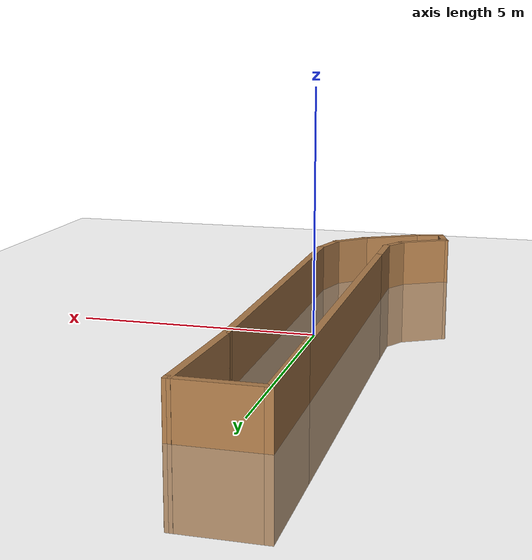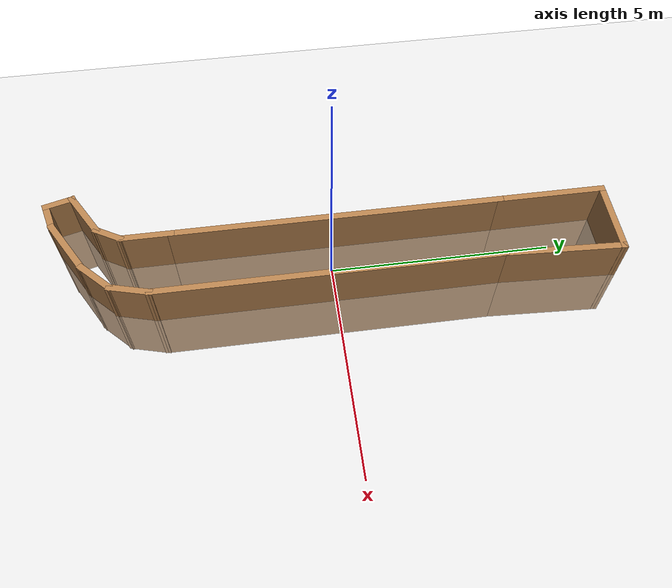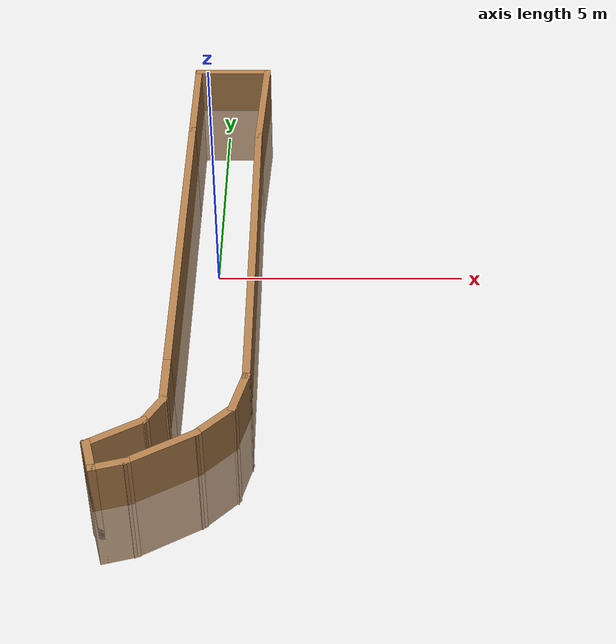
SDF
<sdf version="1.7">
 <world name="default">
  <light name="sun" type="directional">
   <pose>0 0 10 0 -0 0</pose>
   <diffuse>0.8 0.8 0.8 1</diffuse>
   <specular>0.2 0.2 0.2 1</specular>
   <attenuation>
    <range>1000</range>
    <constant>0.9</constant>
    <linear>0.01</linear>
    <quadratic>0.001</quadratic>
   </attenuation>
   <direction>-0.5 0.1 -0.9</direction>
   <spot><inner_angle>0</inner_angle><outer_angle>0</outer_angle><falloff>0</falloff></spot>
  </light>
  <model name="ground_plane">
   <static>1</static>
   <link name="link">
    <collision name="collision">
     <geometry><plane><normal>0 0 1</normal><size>100 100</size></plane></geometry>
     <surface>
      <contact><collide_bitmask>65535</collide_bitmask></contact>
      <friction><ode><mu>100</mu><mu2>50</mu2></ode></friction>
     </surface>
    </collision>
    <visual name="visual">
     <cast_shadows>0</cast_shadows>
     <geometry><plane><normal>0 0 1</normal><size>100 100</size></plane></geometry>
     <material>
      <script><uri>file://media/materials/scripts/gazebo.material</uri><name>Gazebo/Grey</name></script>
     </material>
    </visual>
   </link>
  </model>
  <gravity>0 0 -9.8</gravity>
  <magnetic_field>6e-06 2.3e-05 -4.2e-05</magnetic_field>
  <atmosphere type="adiabatic"/>
  <physics type="ode">
   <max_step_size>0.001</max_step_size>
   <real_time_factor>1</real_time_factor>
   <real_time_update_rate>1000</real_time_update_rate>
  </physics>
  <scene><ambient>0.4 0.4 0.4 1</ambient><background>0.7 0.7 0.7 1</background><shadows>1</shadows></scene>
  <spherical_coordinates>
   <surface_model>EARTH_WGS84</surface_model>
   <latitude_deg>0</latitude_deg>
   <longitude_deg>0</longitude_deg>
   <elevation>0</elevation>
   <heading_deg>0</heading_deg>
  </spherical_coordinates>
  <model name="st_race">
   <pose>-0.587257 0.030906 -1.47357 0 -0 0</pose>
   <link name="Wall_1">
    <collision name="Wall_1_Collision">
     <geometry><box><size>7.75 0.15 2.5</size></box></geometry>
     <pose>0 0 1.25 0 -0 0</pose>
    </collision>
    <visual name="Wall_1_Visual">
     <pose>0 0 1.25 0 -0 0</pose>
     <geometry><box><size>7.75 0.15 2.5</size></box></geometry>
     <material>
      <script><uri>file://media/materials/scripts/gazebo.material</uri><name>Gazebo/Wood</name></script>
      <ambient>1 1 1 1</ambient>
     </material>
     <meta><layer>0</layer></meta>
    </visual>
    <pose>1.31063 -0.165584 0 0 -0 -1.5708</pose>
   </link>
   <link name="Wall_10">
    <collision name="Wall_10_Collision">
     <geometry><box><size>7.5 0.15 2.5</size></box></geometry>
     <pose>0 0 1.25 0 -0 0</pose>
    </collision>
    <visual name="Wall_10_Visual">
     <pose>0 0 1.25 0 -0 0</pose>
     <geometry><box><size>7.5 0.15 2.5</size></box></geometry>
     <material>
      <script><uri>file://media/materials/scripts/gazebo.material</uri><name>Gazebo/Wood</name></script>
      <ambient>1 1 1 1</ambient>
     </material>
     <meta><layer>0</layer></meta>
    </visual>
    <pose>-0.161756 0.206218 0 0 -0 1.5708</pose>
   </link>
   <link name="Wall_11">
    <collision name="Wall_11_Collision">
     <geometry><box><size>2.5 0.15 2.5</size></box></geometry>
     <pose>0 0 1.25 0 -0 0</pose>
    </collision>
    <visual name="Wall_11_Visual">
     <pose>0 0 1.25 0 -0 0</pose>
     <geometry><box><size>2.5 0.15 2.5</size></box></geometry>
     <material>
      <script><uri>file://media/materials/scripts/gazebo.material</uri><name>Gazebo/Wood</name></script>
      <ambient>1 1 1 1</ambient>
     </material>
     <meta><layer>0</layer></meta>
    </visual>
    <pose>-0.161756 5.05622 0 0 -0 1.5708</pose>
   </link>
   <link name="Wall_12">
    <collision name="Wall_12_Collision">
     <geometry><box><size>1.75 0.15 2.5</size></box></geometry>
     <pose>0 0 1.25 0 -0 0</pose>
    </collision>
    <visual name="Wall_12_Visual">
     <pose>0 0 1.25 0 -0 0</pose>
     <geometry><box><size>1.75 0.15 2.5</size></box></geometry>
     <material>
      <script><uri>file://media/materials/scripts/gazebo.material</uri><name>Gazebo/Wood</name></script>
      <ambient>1 1 1 1</ambient>
     </material>
     <meta><layer>0</layer></meta>
    </visual>
    <pose>0.638244 6.23122 0 0 -0 0</pose>
   </link>
   <link name="Wall_13">
    <collision name="Wall_13_Collision">
     <geometry><box><size>2.74993 0.15 2.5</size></box></geometry>
     <pose>0 0 1.25 0 -0 0</pose>
    </collision>
    <visual name="Wall_13_Visual">
     <pose>0 0 1.25 0 -0 0</pose>
     <geometry><box><size>2.74993 0.15 2.5</size></box></geometry>
     <material>
      <script><uri>file://media/materials/scripts/gazebo.material</uri><name>Gazebo/Wood</name></script>
      <ambient>1 1 1 1</ambient>
     </material>
     <meta><layer>0</layer></meta>
    </visual>
    <pose>1.37444 4.93282 0 0 -0 -1.6199</pose>
   </link>
   <link name="Wall_2">
    <collision name="Wall_2_Collision">
     <geometry><box><size>1 0.15 2.5</size></box></geometry>
     <pose>0 0 1.25 0 -0 0</pose>
    </collision>
    <visual name="Wall_2_Visual">
     <pose>0 0 1.25 0 -0 0</pose>
     <geometry><box><size>1 0.15 2.5</size></box></geometry>
     <material>
      <script><uri>file://media/materials/scripts/gazebo.material</uri><name>Gazebo/Wood</name></script>
      <ambient>1 1 1 1</ambient>
     </material>
     <meta><layer>0</layer></meta>
    </visual>
    <pose>1.20064 -4.3761 0 0 -0 -1.8326</pose>
   </link>
   <link name="Wall_3">
    <collision name="Wall_3_Collision">
     <geometry><box><size>1 0.15 2.5</size></box></geometry>
     <pose>0 0 1.25 0 -0 0</pose>
    </collision>
    <visual name="Wall_3_Visual">
     <pose>0 0 1.25 0 -0 0</pose>
     <geometry><box><size>1 0.15 2.5</size></box></geometry>
     <material>
      <script><uri>file://media/materials/scripts/gazebo.material</uri><name>Gazebo/Wood</name></script>
      <ambient>1 1 1 1</ambient>
     </material>
     <meta><layer>0</layer></meta>
    </visual>
    <pose>0.790118 -5.08714 0 0 -0 -2.35619</pose>
   </link>
   <link name="Wall_4">
    <collision name="Wall_4_Collision">
     <geometry><box><size>1.5 0.15 2.5</size></box></geometry>
     <pose>0 0 1.25 0 -0 0</pose>
    </collision>
    <visual name="Wall_4_Visual">
     <pose>0 0 1.25 0 -0 0</pose>
     <geometry><box><size>1.5 0.15 2.5</size></box></geometry>
     <material>
      <script><uri>file://media/materials/scripts/gazebo.material</uri><name>Gazebo/Wood</name></script>
      <ambient>1 1 1 1</ambient>
     </material>
     <meta><layer>0</layer></meta>
    </visual>
    <pose>-0.094969 -5.72516 0 0 -0 -2.61799</pose>
   </link>
   <link name="Wall_5">
    <collision name="Wall_5_Collision">
     <geometry><box><size>0.75 0.15 2.5</size></box></geometry>
     <pose>0 0 1.25 0 -0 0</pose>
    </collision>
    <visual name="Wall_5_Visual">
     <pose>0 0 1.25 0 -0 0</pose>
     <geometry><box><size>0.75 0.15 2.5</size></box></geometry>
     <material>
      <script><uri>file://media/materials/scripts/gazebo.material</uri><name>Gazebo/Wood</name></script>
      <ambient>1 1 1 1</ambient>
     </material>
     <meta><layer>0</layer></meta>
    </visual>
    <pose>-0.969314 -6.14031 0 0 -0 -2.87979</pose>
   </link>
   <link name="Wall_6">
    <collision name="Wall_6_Collision">
     <geometry><box><size>0.75 0.15 2.5</size></box></geometry>
     <pose>0 0 1.25 0 -0 0</pose>
    </collision>
    <visual name="Wall_6_Visual">
     <pose>0 0 1.25 0 -0 0</pose>
     <geometry><box><size>0.75 0.15 2.5</size></box></geometry>
     <material>
      <script><uri>file://media/materials/scripts/gazebo.material</uri><name>Gazebo/Wood</name></script>
      <ambient>1 1 1 1</ambient>
     </material>
     <meta><layer>0</layer></meta>
    </visual>
    <pose>-1.33674 -5.92818 0 0 -0 1.8326</pose>
   </link>
   <link name="Wall_7">
    <collision name="Wall_7_Collision">
     <geometry><box><size>1.25 0.15 2.5</size></box></geometry>
     <pose>0 0 1.25 0 -0 0</pose>
    </collision>
    <visual name="Wall_7_Visual">
     <pose>0 0 1.25 0 -0 0</pose>
     <geometry><box><size>1.25 0.15 2.5</size></box></geometry>
     <material>
      <script><uri>file://media/materials/scripts/gazebo.material</uri><name>Gazebo/Wood</name></script>
      <ambient>1 1 1 1</ambient>
     </material>
     <meta><layer>0</layer></meta>
    </visual>
    <pose>-0.93807 -5.3634 0 0 -0 0.523599</pose>
   </link>
   <link name="Wall_8">
    <collision name="Wall_8_Collision">
     <geometry><box><size>0.75 0.15 2.5</size></box></geometry>
     <pose>0 0 1.25 0 -0 0</pose>
    </collision>
    <visual name="Wall_8_Visual">
     <pose>0 0 1.25 0 -0 0</pose>
     <geometry><box><size>0.75 0.15 2.5</size></box></geometry>
     <material>
      <script><uri>file://media/materials/scripts/gazebo.material</uri><name>Gazebo/Wood</name></script>
      <ambient>1 1 1 1</ambient>
     </material>
     <meta><layer>0</layer></meta>
    </visual>
    <pose>-0.311756 -4.82859 0 0 -0 1.0472</pose>
   </link>
   <link name="Wall_9">
    <collision name="Wall_9_Collision">
     <geometry><box><size>1.25 0.15 2.5</size></box></geometry>
     <pose>0 0 1.25 0 -0 0</pose>
    </collision>
    <visual name="Wall_9_Visual">
     <pose>0 0 1.25 0 -0 0</pose>
     <geometry><box><size>1.25 0.15 2.5</size></box></geometry>
     <material>
      <script><uri>file://media/materials/scripts/gazebo.material</uri><name>Gazebo/Wood</name></script>
      <ambient>1 1 1 1</ambient>
     </material>
     <meta><layer>0</layer></meta>
    </visual>
    <pose>-0.161756 -4.01878 0 0 -0 1.5708</pose>
   </link>
   <static>1</static>
  </model>
 </world>
</sdf>
